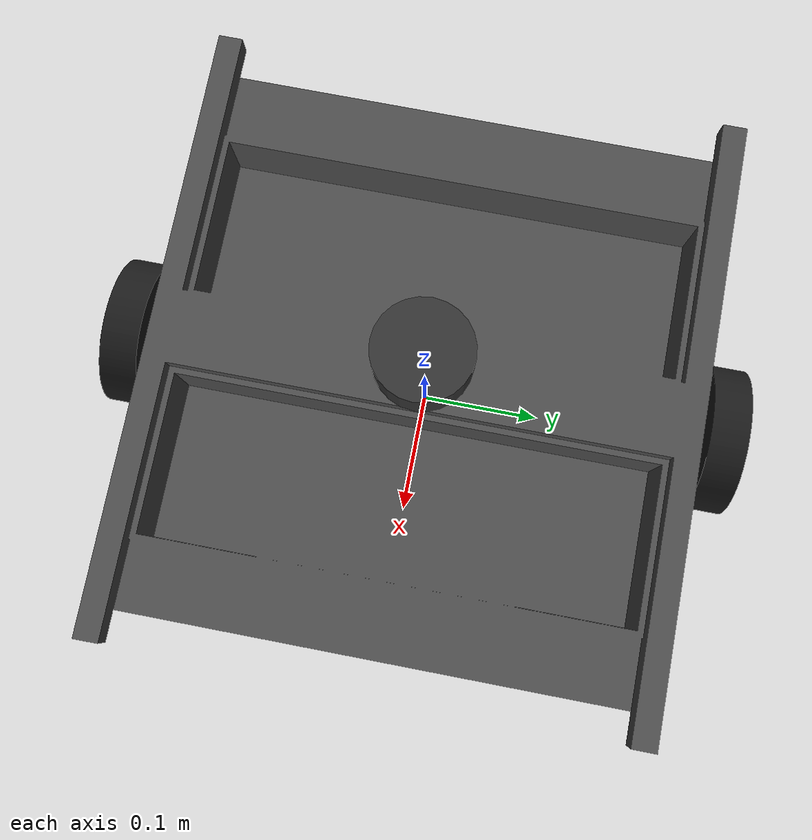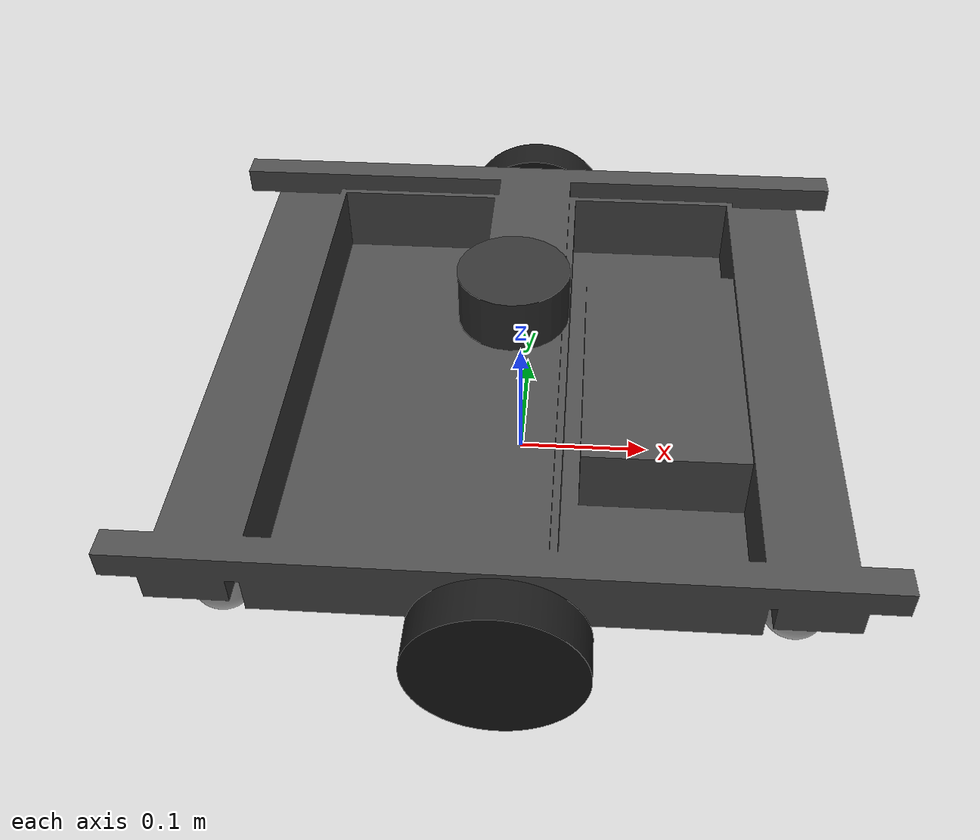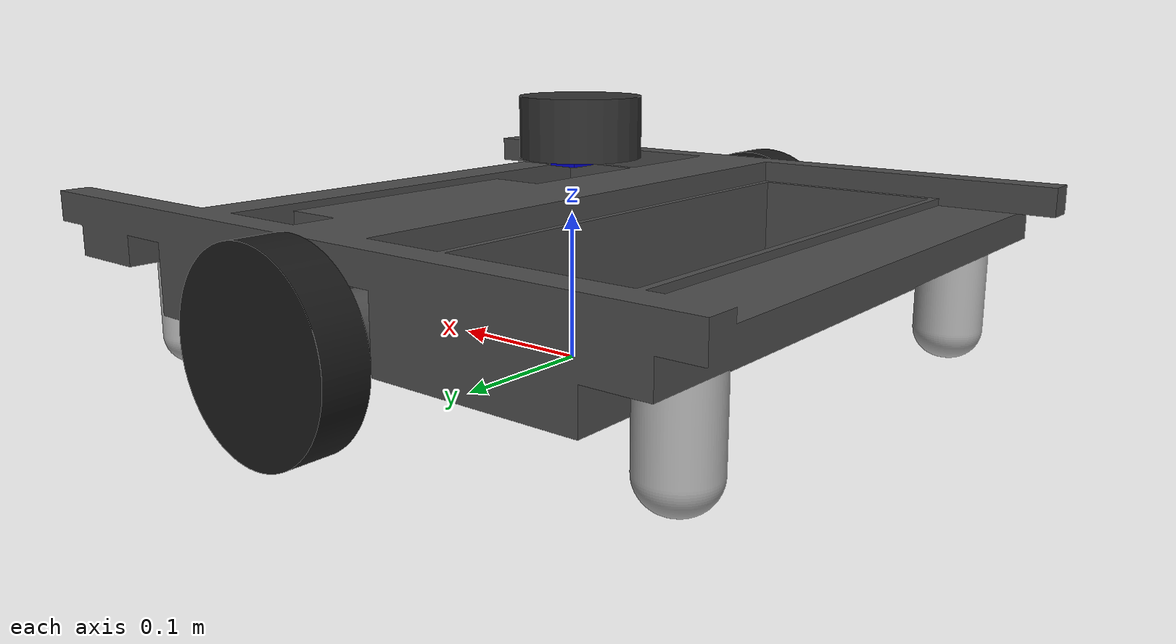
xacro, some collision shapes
<?xml version="1.0"?>
<robot xmlns:xacro="http://www.ros.org/wiki/xacro" name="servebot">

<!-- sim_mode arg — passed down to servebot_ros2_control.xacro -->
<xacro:arg name="sim_mode" default="true"/>

<!-- Include Gazebo Parameters -->
<xacro:include filename="$(find servebot_description)/urdf/servebot_gazebo.xacro" />

<!-- Include ros2_control Plugins -->
<xacro:include filename="$(find servebot_description)/urdf/servebot_ros2_control.xacro" />

<!-- BASE FOOTPRINT -->
  <link name="base_footprint"/>

  <joint name="base_footprint_joint" type="fixed">
    <parent link="base_footprint"/>
    <child  link="base_link"/>
    <origin xyz="0 0 0.037" rpy="0 0 0"/>
  </joint>

  <!-- BASE LINK -->
  <link name="base_link">
    <inertial>
      <origin xyz="0.0 0.0 0.09596" rpy="0 0 0"/>
      <mass value="5.132"/>
      <inertia ixx="0.1158"  ixy="0.0"  ixz="0.0"
                             iyy="0.1275" iyz="0.0"
                                          izz="0.2417"/>
    </inertial>
    <visual>
      <origin xyz="0.0 0.0 0.0" rpy="0 0 0"/>
      <geometry>
        <mesh filename="package://servebot_description/meshes/base_link.stl" scale="0.001 0.001 0.001"/>
      </geometry>
      <material name="dark_gray">
        <color rgba="0.3 0.3 0.3 1.0"/>
      </material>
    </visual>
    <collision>
      <origin xyz="0.0 0.0 0.037" rpy="0 0 0"/>
      <geometry>
        <box size="0.445 0.445 0.020"/>
      </geometry>
    </collision>
  </link>

  <!-- RIGHT WHEEL -->
  <joint name="wheel_right_joint" type="continuous">
    <parent link="base_link"/>
    <child  link="wheel_right"/>
    <origin xyz="0 -0.2225 0.023" rpy="0 0 0"/>
    <axis xyz="0 1 0"/>
  </joint>

  <link name="wheel_right">
    <inertial>
      <origin xyz="0.0 -0.24238 0.060" rpy="0 0 0"/>
      <mass value="0.3177"/>
      <inertia ixx="0.0003084"  ixy="0.0"  ixz="0.0"
                                iyy="0.0005682" iyz="0.0"
                                                izz="0.0003084"/>
    </inertial>
    <visual>
      <origin xyz="0.0 0.0 0.0" rpy="3.14 0 0"/>
      <geometry>
        <mesh filename="package://servebot_description/meshes/wheel_right.stl" scale="0.001 0.001 0.001"/>
      </geometry>
      <material name="black">
        <color rgba="0.1 0.1 0.1 1.0"/>
      </material>
    </visual>
    <collision>
      <origin xyz="0.0 0.0 0.0" rpy="1.5707 0 0"/>
      <geometry>
        <cylinder radius="0.060" length="0.040"/>
      </geometry>
    </collision>
  </link>

  <!-- LEFT WHEEL -->
  <joint name="wheel_left_joint" type="continuous">
    <parent link="base_link"/>
    <child  link="wheel_left"/>
    <origin xyz="0 0.2225 0.023" rpy="0 0 0"/>
    <axis xyz="0 1 0"/>
  </joint>

  <link name="wheel_left">
    <inertial>
      <origin xyz="0.0 0.24238 0.060" rpy="0 0 0"/>
      <mass value="0.3177"/>
      <inertia ixx="0.0003084"  ixy="0.0"  ixz="0.0"
                                iyy="0.0005682" iyz="0.0"
                                                izz="0.0003084"/>
    </inertial>
    <visual>
      <origin xyz="0.0 0.0 0.0" rpy="0 0 0"/>
      <geometry>
        <mesh filename="package://servebot_description/meshes/wheel_left.stl" scale="0.001 0.001 0.001"/>
      </geometry>
      <material name="black">
        <color rgba="0.1 0.1 0.1 1.0"/>
      </material>
    </visual>
    <collision>
      <origin xyz="0.0 0.0 0.0" rpy="1.5707 0 0"/>
      <geometry>
        <cylinder radius="0.060" length="0.040"/>
      </geometry>
    </collision>
  </link>

  <!-- CASTER FRONT RIGHT -->
  <joint name="caster_front_right_joint" type="fixed">
    <parent link="base_link"/>
    <child  link="caster_front_right"/>
    <origin xyz="0.1975 -0.1625 -0.015" rpy="0 0 0"/>
  </joint>

  <link name="caster_front_right">
    <inertial>
      <origin xyz="0.1975 -0.1625 0.04137" rpy="0 0 0"/>
      <mass value="0.1273"/>
      <inertia ixx="0.00007014"  ixy="0.0"  ixz="0.0"
                                 iyy="0.00007014" iyz="0.0"
                                                  izz="0.00003102"/>
    </inertial>
    <visual>
      <origin xyz="0 0 0.055" rpy="-1.57 0 0"/>
      <geometry>
        <mesh filename="package://servebot_description/meshes/caster_front_right.stl" scale="0.001 0.001 0.001"/>
      </geometry>
      <material name="light_gray">
        <color rgba="0.7 0.7 0.7 1.0"/>
      </material>
    </visual>
    <collision>
      <origin xyz="0 0 0" rpy="0 0 0"/>
      <geometry>
        <sphere radius="0.022"/>
      </geometry>
    </collision>
  </link>

  <!-- CASTER FRONT LEFT -->
  <joint name="caster_front_left_joint" type="fixed">
    <parent link="base_link"/>
    <child  link="caster_front_left"/>
    <origin xyz="0.1975 0.1625 -0.015" rpy="0 0 0"/>
  </joint>

  <link name="caster_front_left">
    <inertial>
      <origin xyz="0.1975 0.1625 0.04137" rpy="0 0 0"/>
      <mass value="0.1273"/>
      <inertia ixx="0.00007014"  ixy="0.0"  ixz="0.0"
                                 iyy="0.00007014" iyz="0.0"
                                                  izz="0.00003102"/>
    </inertial>
    <visual>
      <origin xyz="0 0 0.055" rpy="-1.57 0 0"/>
      <geometry>
        <mesh filename="package://servebot_description/meshes/caster_front_left.stl" scale="0.001 0.001 0.001"/>
      </geometry>
      <material name="light_gray">
        <color rgba="0.7 0.7 0.7 1.0"/>
      </material>
    </visual>
    <collision>
      <origin xyz="0 0 0" rpy="0 0 0"/>
      <geometry>
        <sphere radius="0.022"/>
      </geometry>
    </collision>
  </link>

  <!-- CASTER REAR RIGHT -->
  <joint name="caster_rear_right_joint" type="fixed">
    <parent link="base_link"/>
    <child  link="caster_rear_right"/>
    <origin xyz="-0.1975 -0.1625 -0.015" rpy="0 0 0"/>
  </joint>

  <link name="caster_rear_right">
    <inertial>
      <origin xyz="-0.1975 -0.1625 0.04137" rpy="0 0 0"/>
      <mass value="0.1273"/>
      <inertia ixx="0.00007014"  ixy="0.0"  ixz="0.0"
                                 iyy="0.00007014" iyz="0.0"
                                                  izz="0.00003102"/>
    </inertial>
    <visual>
      <origin xyz="0 0 0.055" rpy="-1.57 0 0"/>
      <geometry>
        <mesh filename="package://servebot_description/meshes/caster_rear_right.stl" scale="0.001 0.001 0.001"/>
      </geometry>
      <material name="light_gray">
        <color rgba="0.7 0.7 0.7 1.0"/>
      </material>
    </visual>
    <collision>
      <origin xyz="0 0 0" rpy="0 0 0"/>
      <geometry>
        <sphere radius="0.022"/>
      </geometry>
    </collision>
  </link>

  <!-- CASTER REAR LEFT -->
  <joint name="caster_rear_left_joint" type="fixed">
    <parent link="base_link"/>
    <child  link="caster_rear_left"/>
    <origin xyz="-0.1975 0.1625 -0.015" rpy="0 0 0"/>
  </joint>

  <link name="caster_rear_left">
    <inertial>
      <origin xyz="-0.1975 0.1625 0.04137" rpy="0 0 0"/>
      <mass value="0.1273"/>
      <inertia ixx="0.00007014"  ixy="0.0"  ixz="0.0"
                                 iyy="0.00007014" iyz="0.0"
                                                  izz="0.00003102"/>
    </inertial>
    <visual>
      <origin xyz="0 0 0.055" rpy="-1.57 0 0"/>
      <geometry>
        <mesh filename="package://servebot_description/meshes/caster_rear_left.stl" scale="0.001 0.001 0.001"/>
      </geometry>
      <material name="light_gray">
        <color rgba="0.7 0.7 0.7 1.0"/>
      </material>
    </visual>
    <collision>
      <origin xyz="0 0 0" rpy="0 0 0"/>
      <geometry>
        <sphere radius="0.022"/>
      </geometry>
    </collision>
  </link>

  <link name="imu_link">
    <inertial>
      <origin xyz="-0.00552433659106688 0.000168210391520346 0.000514000497342681" rpy="0 0 0" />
      <mass value="0.000528415362211671" />
      <inertia ixx="1.46176048428261E-08" ixy="1.40015117949421E-10" ixz="-1.99633872937403E-12"
               iyy="8.59662482954888E-09" iyz="7.52375112767959E-12"
               izz="2.30279421279312E-08" />
    </inertial>
    <visual>
      <origin xyz="0 0 0" rpy="0 0 0" />
      <geometry>
        <mesh filename="package://servebot_description/meshes/imu_link.STL" />
      </geometry>
      <material name="blue">
        <color rgba="0.0 0.0 0.8 1.0"/>
      </material>
    </visual>
    <collision>
      <origin xyz="0 0 0" rpy="0 0 0" />
      <geometry>
        <box size="0.02 0.02 0.01"/>
      </geometry>
    </collision>
  </link>

  <joint name="imu_joint" type="fixed">
    <origin xyz="0 0 0.10" rpy="0 0 0" />
    <parent link="base_link" />
    <child link="imu_link" />
    <axis xyz="0 0 0" />
  </joint>

  <link name="laser_link">
    <inertial>
      <origin xyz="-0.011945780406062 -0.000381929217680526 -0.0170649378129477" rpy="0 0 0" />
      <mass value="0.073084435549317" />
      <inertia ixx="1.96074931730795E-05" ixy="-3.62091076640009E-07" ixz="4.28230084046735E-07"
               iyy="2.40983835136327E-05" iyz="1.50180909250652E-08"
               izz="4.14184164228595E-05" />
    </inertial>
    <visual>
      <origin xyz="0 0 0" rpy="0 0 0" />
      <geometry>
        <mesh filename="package://servebot_description/meshes/laser_link.STL" />
      </geometry>
      <material name="dark_grey">
        <color rgba="0.2 0.2 0.2 1.0"/>
      </material>
    </visual>
    <collision>
      <origin xyz="0 0 0" rpy="0 0 0" />
      <geometry>
        <cylinder radius="0.040" length="0.040"/>
      </geometry>
    </collision>
  </link>

  <joint name="laser_joint" type="fixed">
    <origin xyz="-0.0050526 -0.0023221 0.1208" rpy="0 0 3.14" />
    <parent link="base_link" />
    <child link="laser_link" />
    <axis xyz="0 0 0" />
  </joint>

</robot>
